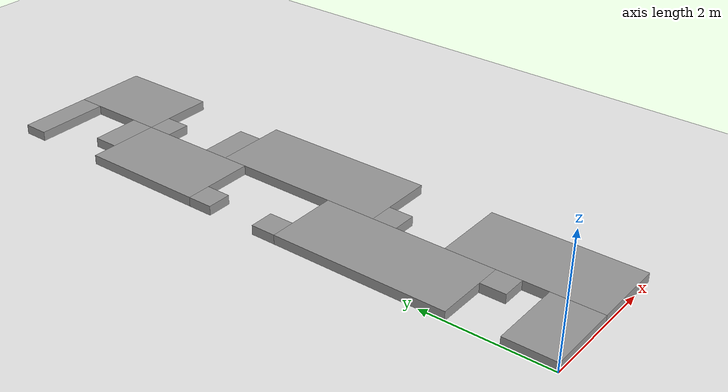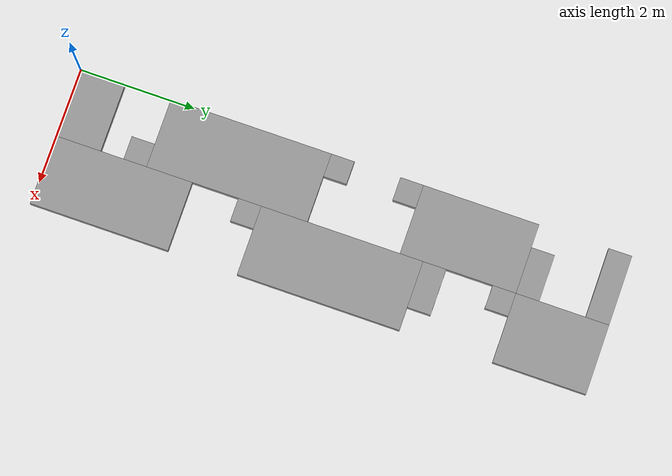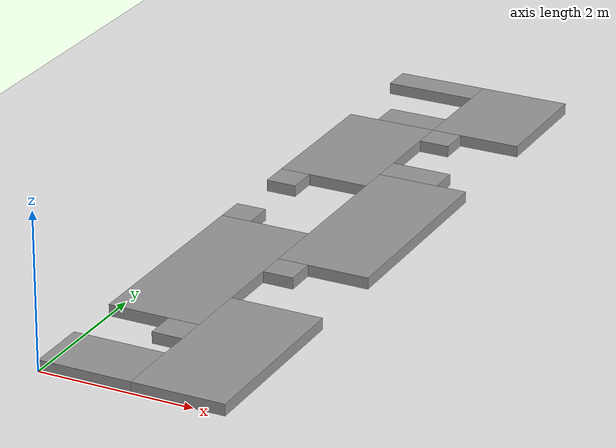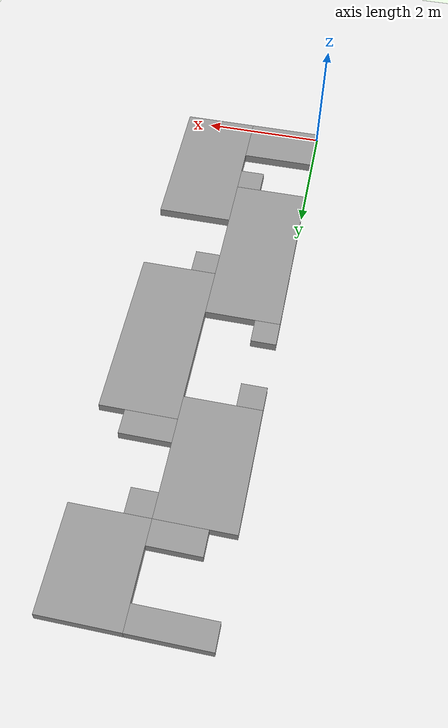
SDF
<sdf version="1.7">
 <world name="default">
  <light name="sun" type="directional">
   <pose>0 0 10 0 -0 0</pose>
   <diffuse>0.8 0.8 0.8 1</diffuse>
   <specular>0.2 0.2 0.2 1</specular>
   <attenuation>
    <range>1000</range>
    <constant>0.9</constant>
    <linear>0.01</linear>
    <quadratic>0.001</quadratic>
   </attenuation>
   <direction>-0.5 0.1 -0.9</direction>
   <spot><inner_angle>0</inner_angle><outer_angle>0</outer_angle><falloff>0</falloff></spot>
  </light>
  <model name="ground_plane">
   <static>1</static>
   <link name="link">
    <collision name="collision">
     <geometry><plane><normal>0 0 1</normal><size>100 100</size></plane></geometry>
     <surface>
      <contact><collide_bitmask>65535</collide_bitmask></contact>
      <friction><ode><mu>100</mu><mu2>50</mu2></ode></friction>
     </surface>
    </collision>
    <visual name="visual">
     <cast_shadows>0</cast_shadows>
     <geometry><plane><normal>0 0 1</normal><size>100 100</size></plane></geometry>
     <material>
      <script><uri>file://media/materials/scripts/gazebo.material</uri><name>Gazebo/White</name></script>
     </material>
    </visual>
   </link>
  </model>
  <physics type="ode">
   <real_time_update_rate>1000</real_time_update_rate>
   <max_step_size>0.001</max_step_size>
   <real_time_factor>1</real_time_factor>
   <ode>
    <solver>
     <type>quick</type>
     <iters>150</iters>
     <precon_iters>0</precon_iters>
     <sor>1.4</sor>
     <use_dynamic_moi_rescaling>1</use_dynamic_moi_rescaling>
    </solver>
    <constraints>
     <cfm>1e-05</cfm>
     <erp>0.2</erp>
     <contact_max_correcting_vel>2000</contact_max_correcting_vel>
     <contact_surface_layer>0.01</contact_surface_layer>
    </constraints>
   </ode>
  </physics>
  <scene><ambient>0.4 0.4 0.4 1</ambient><background>0.7 0.7 0.7 1</background><shadows>1</shadows></scene>
  <gravity>0 0 -9.8</gravity>
  <magnetic_field>6e-06 2.3e-05 -4.2e-05</magnetic_field>
  <atmosphere type="adiabatic"/>
  <spherical_coordinates>
   <surface_model>EARTH_WGS84</surface_model>
   <latitude_deg>0</latitude_deg>
   <longitude_deg>0</longitude_deg>
   <elevation>0</elevation>
   <heading_deg>0</heading_deg>
  </spherical_coordinates>
  <model name="unit_box_0">
   <static>1</static>
   <pose>0.6 0.4 0.075 0 -0 0</pose>
   <link name="link">
    <inertial>
     <mass>1</mass>
     <inertia>
      <ixx>0.166667</ixx>
      <ixy>0</ixy>
      <ixz>0</ixz>
      <iyy>0.166667</iyy>
      <iyz>0</iyz>
      <izz>0.166667</izz>
     </inertia>
    </inertial>
    <collision name="collision"><geometry><box><size>1.2 0.8 0.15</size></box></geometry></collision>
    <visual name="visual">
     <geometry><box><size>1.2 0.8 0.15</size></box></geometry>
     <material>
      <script><name>Gazebo/Grey</name><uri>file://media/materials/scripts/gazebo.material</uri></script>
     </material>
    </visual>
   </link>
  </model>
  <model name="unit_box_1">
   <static>1</static>
   <pose>1.8 1.2 0.075 0 -0 0</pose>
   <link name="link">
    <inertial>
     <mass>1</mass>
     <inertia>
      <ixx>0.166667</ixx>
      <ixy>0</ixy>
      <ixz>0</ixz>
      <iyy>0.166667</iyy>
      <iyz>0</iyz>
      <izz>0.166667</izz>
     </inertia>
    </inertial>
    <collision name="collision"><geometry><box><size>1.2 2.4 0.15</size></box></geometry></collision>
    <visual name="visual">
     <geometry><box><size>1.2 2.4 0.15</size></box></geometry>
     <material>
      <script><name>Gazebo/Grey</name><uri>file://media/materials/scripts/gazebo.material</uri></script>
     </material>
    </visual>
   </link>
  </model>
  <model name="unit_box_2">
   <static>1</static>
   <pose>1 1.4 0.075 0 -0 0</pose>
   <link name="link">
    <inertial>
     <mass>1</mass>
     <inertia>
      <ixx>0.166667</ixx>
      <ixy>0</ixy>
      <ixz>0</ixz>
      <iyy>0.166667</iyy>
      <iyz>0</iyz>
      <izz>0.166667</izz>
     </inertia>
    </inertial>
    <collision name="collision"><geometry><box><size>0.4 0.4 0.15</size></box></geometry></collision>
    <visual name="visual">
     <geometry><box><size>0.4 0.4 0.15</size></box></geometry>
     <material>
      <script><name>Gazebo/Grey</name><uri>file://media/materials/scripts/gazebo.material</uri></script>
     </material>
    </visual>
   </link>
  </model>
  <model name="unit_box_3">
   <static>1</static>
   <pose>0.6 3 0.075 0 -0 0</pose>
   <link name="link">
    <inertial>
     <mass>1</mass>
     <inertia>
      <ixx>0.166667</ixx>
      <ixy>0</ixy>
      <ixz>0</ixz>
      <iyy>0.166667</iyy>
      <iyz>0</iyz>
      <izz>0.166667</izz>
     </inertia>
    </inertial>
    <collision name="collision"><geometry><box><size>1.2 2.8 0.15</size></box></geometry></collision>
    <visual name="visual">
     <geometry><box><size>1.2 2.8 0.15</size></box></geometry>
     <material>
      <script><name>Gazebo/Grey</name><uri>file://media/materials/scripts/gazebo.material</uri></script>
     </material>
    </visual>
   </link>
  </model>
  <model name="unit_box_4">
   <static>1</static>
   <pose>0.2 4.6 0.075 0 -0 0</pose>
   <link name="link">
    <inertial>
     <mass>1</mass>
     <inertia>
      <ixx>0.166667</ixx>
      <ixy>0</ixy>
      <ixz>0</ixz>
      <iyy>0.166667</iyy>
      <iyz>0</iyz>
      <izz>0.166667</izz>
     </inertia>
    </inertial>
    <collision name="collision"><geometry><box><size>0.4 0.4 0.15</size></box></geometry></collision>
    <visual name="visual">
     <geometry><box><size>0.4 0.4 0.15</size></box></geometry>
     <material>
      <script><name>Gazebo/Grey</name><uri>file://media/materials/scripts/gazebo.material</uri></script>
     </material>
    </visual>
   </link>
  </model>
  <model name="unit_box_5">
   <static>1</static>
   <pose>1.4 3.4 0.075 0 -0 0</pose>
   <link name="link">
    <inertial>
     <mass>1</mass>
     <inertia>
      <ixx>0.166667</ixx>
      <ixy>0</ixy>
      <ixz>0</ixz>
      <iyy>0.166667</iyy>
      <iyz>0</iyz>
      <izz>0.166667</izz>
     </inertia>
    </inertial>
    <collision name="collision"><geometry><box><size>0.4 0.4 0.15</size></box></geometry></collision>
    <visual name="visual">
     <geometry><box><size>0.4 0.4 0.15</size></box></geometry>
     <material>
      <script><name>Gazebo/Grey</name><uri>file://media/materials/scripts/gazebo.material</uri></script>
     </material>
    </visual>
   </link>
  </model>
  <model name="unit_box_6">
   <static>1</static>
   <pose>1.8 5 0.075 0 -0 0</pose>
   <link name="link">
    <inertial>
     <mass>1</mass>
     <inertia>
      <ixx>0.166667</ixx>
      <ixy>0</ixy>
      <ixz>0</ixz>
      <iyy>0.166667</iyy>
      <iyz>0</iyz>
      <izz>0.166667</izz>
     </inertia>
    </inertial>
    <collision name="collision"><geometry><box><size>1.2 2.8 0.15</size></box></geometry></collision>
    <visual name="visual">
     <geometry><box><size>1.2 2.8 0.15</size></box></geometry>
     <material>
      <script><name>Gazebo/Grey</name><uri>file://media/materials/scripts/gazebo.material</uri></script>
     </material>
    </visual>
   </link>
  </model>
  <model name="unit_box_7">
   <static>1</static>
   <pose>1.6 6.6 0.075 0 -0 0</pose>
   <link name="link">
    <inertial>
     <mass>1</mass>
     <inertia>
      <ixx>0.166667</ixx>
      <ixy>0</ixy>
      <ixz>0</ixz>
      <iyy>0.166667</iyy>
      <iyz>0</iyz>
      <izz>0.166667</izz>
     </inertia>
    </inertial>
    <collision name="collision"><geometry><box><size>0.8 0.4 0.15</size></box></geometry></collision>
    <visual name="visual">
     <geometry><box><size>0.8 0.4 0.15</size></box></geometry>
     <material>
      <script><name>Gazebo/Grey</name><uri>file://media/materials/scripts/gazebo.material</uri></script>
     </material>
    </visual>
   </link>
  </model>
  <model name="unit_box_8">
   <static>1</static>
   <pose>0.2 5.8 0.075 0 -0 0</pose>
   <link name="link">
    <inertial>
     <mass>1</mass>
     <inertia>
      <ixx>0.166667</ixx>
      <ixy>0</ixy>
      <ixz>0</ixz>
      <iyy>0.166667</iyy>
      <iyz>0</iyz>
      <izz>0.166667</izz>
     </inertia>
    </inertial>
    <collision name="collision"><geometry><box><size>0.4 0.4 0.15</size></box></geometry></collision>
    <visual name="visual">
     <geometry><box><size>0.4 0.4 0.15</size></box></geometry>
     <material>
      <script><name>Gazebo/Grey</name><uri>file://media/materials/scripts/gazebo.material</uri></script>
     </material>
    </visual>
   </link>
  </model>
  <model name="unit_box_9">
   <static>1</static>
   <pose>0.6 7 0.075 0 -0 0</pose>
   <link name="link">
    <inertial>
     <mass>1</mass>
     <inertia>
      <ixx>0.166667</ixx>
      <ixy>0</ixy>
      <ixz>0</ixz>
      <iyy>0.166667</iyy>
      <iyz>0</iyz>
      <izz>0.166667</izz>
     </inertia>
    </inertial>
    <collision name="collision"><geometry><box><size>1.2 2 0.15</size></box></geometry></collision>
    <visual name="visual">
     <geometry><box><size>1.2 2 0.15</size></box></geometry>
     <material>
      <script><name>Gazebo/Grey</name><uri>file://media/materials/scripts/gazebo.material</uri></script>
     </material>
    </visual>
   </link>
  </model>
  <model name="unit_box_10">
   <static>1</static>
   <pose>0.8 8.2 0.075 0 -0 0</pose>
   <link name="link">
    <inertial>
     <mass>1</mass>
     <inertia>
      <ixx>0.166667</ixx>
      <ixy>0</ixy>
      <ixz>0</ixz>
      <iyy>0.166667</iyy>
      <iyz>0</iyz>
      <izz>0.166667</izz>
     </inertia>
    </inertial>
    <collision name="collision"><geometry><box><size>0.8 0.4 0.15</size></box></geometry></collision>
    <visual name="visual">
     <geometry><box><size>0.8 0.4 0.15</size></box></geometry>
     <material>
      <script><name>Gazebo/Grey</name><uri>file://media/materials/scripts/gazebo.material</uri></script>
     </material>
    </visual>
   </link>
  </model>
  <model name="unit_box_11">
   <static>1</static>
   <pose>1.4 7.8 0.075 0 -0 0</pose>
   <link name="link">
    <inertial>
     <mass>1</mass>
     <inertia>
      <ixx>0.166667</ixx>
      <ixy>0</ixy>
      <ixz>0</ixz>
      <iyy>0.166667</iyy>
      <iyz>0</iyz>
      <izz>0.166667</izz>
     </inertia>
    </inertial>
    <collision name="collision"><geometry><box><size>0.4 0.4 0.15</size></box></geometry></collision>
    <visual name="visual">
     <geometry><box><size>0.4 0.4 0.15</size></box></geometry>
     <material>
      <script><name>Gazebo/Grey</name><uri>file://media/materials/scripts/gazebo.material</uri></script>
     </material>
    </visual>
   </link>
  </model>
  <model name="unit_box_12">
   <static>1</static>
   <pose>1.8 8.8 0.075 0 -0 0</pose>
   <link name="link">
    <inertial>
     <mass>1</mass>
     <inertia>
      <ixx>0.166667</ixx>
      <ixy>0</ixy>
      <ixz>0</ixz>
      <iyy>0.166667</iyy>
      <iyz>0</iyz>
      <izz>0.166667</izz>
     </inertia>
    </inertial>
    <collision name="collision"><geometry><box><size>1.2 1.6 0.15</size></box></geometry></collision>
    <visual name="visual">
     <geometry><box><size>1.2 1.6 0.15</size></box></geometry>
     <material>
      <script><name>Gazebo/Grey</name><uri>file://media/materials/scripts/gazebo.material</uri></script>
     </material>
    </visual>
   </link>
  </model>
  <model name="unit_box_13">
   <static>1</static>
   <pose>0.6 9.4 0.075 0 -0 0</pose>
   <link name="link">
    <inertial>
     <mass>1</mass>
     <inertia>
      <ixx>0.166667</ixx>
      <ixy>0</ixy>
      <ixz>0</ixz>
      <iyy>0.166667</iyy>
      <iyz>0</iyz>
      <izz>0.166667</izz>
     </inertia>
    </inertial>
    <collision name="collision"><geometry><box><size>1.2 0.4 0.15</size></box></geometry></collision>
    <visual name="visual">
     <geometry><box><size>1.2 0.4 0.15</size></box></geometry>
     <material>
      <script><name>Gazebo/Grey</name><uri>file://media/materials/scripts/gazebo.material</uri></script>
     </material>
    </visual>
   </link>
  </model>
 </world>
</sdf>
